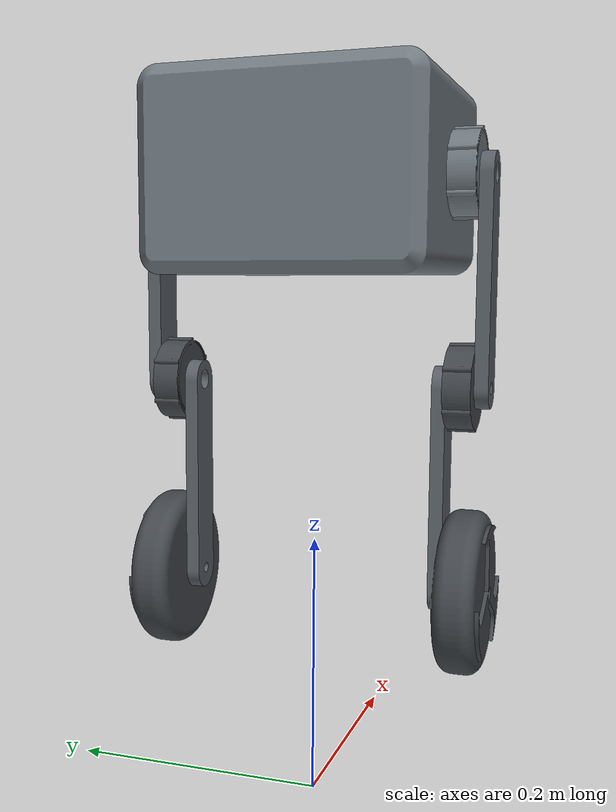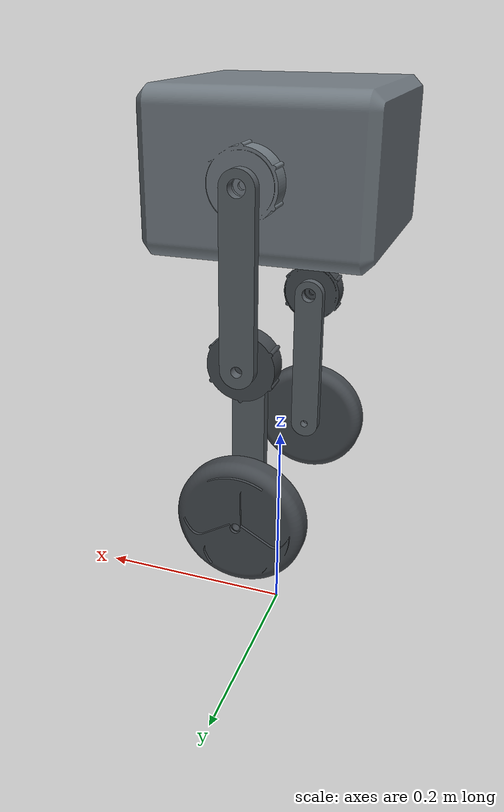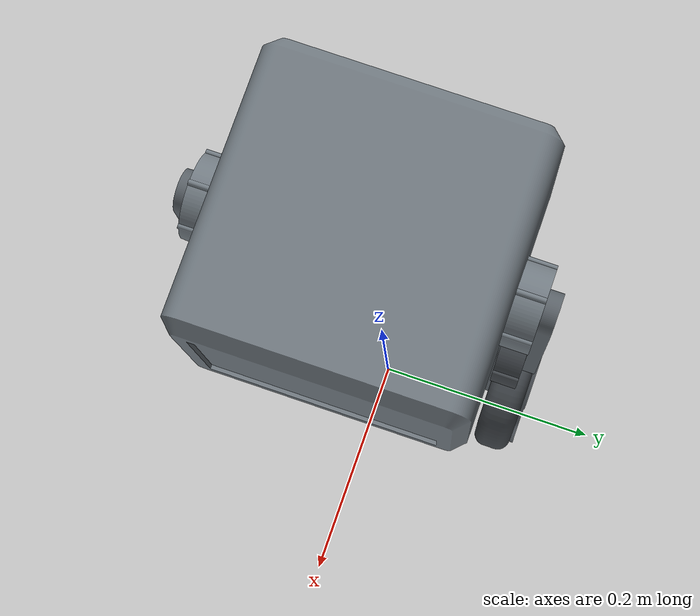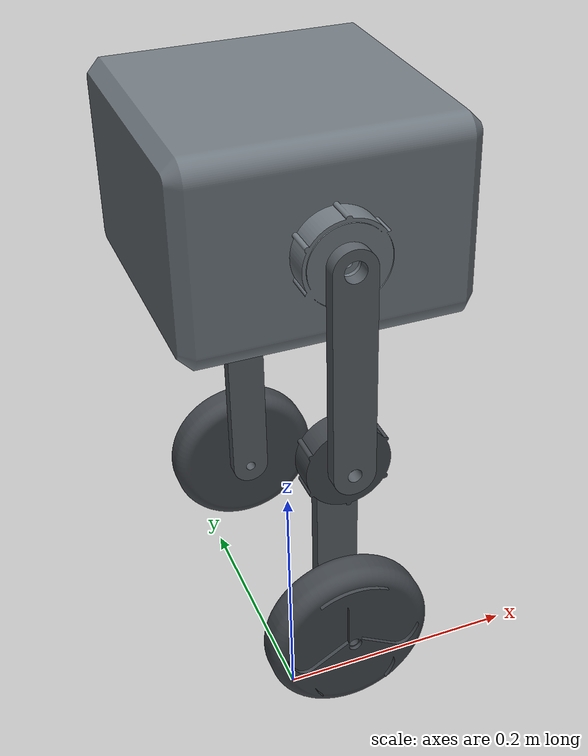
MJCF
<?xml version="1.0" ?>
<!-- Generated using onshape-to-robot -->
<!-- Onshape document_id: e4340d7d6024c97acba5ed0c -->
<mujoco model="balance_v1.1">
  <compiler angle="radian" meshdir="assets" autolimits="true"/>
  <default>
    <default class="balance_v1.1">
      <joint frictionloss="0.1" armature="0.005"/>
      <position kp="50" dampratio="1"/>
      <default class="visual">
        <geom type="mesh" contype="0" conaffinity="0" group="2"/>
      </default>
      <default class="collision">
        <geom group="3"/>
      </default>
    </default>
  </default>
  <worldbody>
    <!-- Link base_chassis -->
    <body name="base_chassis" pos="0 0 0.4" quat="1 0 0 0" childclass="balance_v1.1">
      <freejoint name="base_chassis_free_joint"/>
      <inertial pos="-0.000876166 1.80868e-17 0.07" mass="6.96621" fullinertia="0.0350809 0.0329824 0.0460841 0 0 0"/>
      <!-- Part base_chassis -->
      <geom type="mesh" class="visual" pos="0 1.38778e-17 0.07" quat="1 0 0 0" mesh="base_chassis" material="base_chassis_material"/>
      <geom type="mesh" class="collision" pos="0 1.38778e-17 0.07" quat="1 0 0 0" mesh="base_chassis" material="base_chassis_material"/>
      <!-- Link left_base_rod -->

      <!-- IMU LINK -->
      <body name="imu_link" pos="-0.000876166 1.80868e-17 0.0359">
        <site name="imu_site" pos="0 0 0" size="0.005" rgba="1 0 0 1"/>
      </body>

      <body name="left_base_rod" pos="2.94463e-18 0.12 0.07" quat="0.707107 0.707107 -1.11022e-16 -1.03112e-17">
        <!-- Joint from base_chassis to left_base_rod -->
        <joint axis="0 0 -1" name="left_hip_joint" type="hinge" frictionloss="0.05" damping="0.1"/>
        <inertial pos="6.98473e-18 -0.076487 -0.005" mass="0.061895" fullinertia="0.000146498 5.19435e-06 0.000150661 6.40253e-38 2.31366e-36 -2.88394e-20"/>
        <!-- Part left_base_rod -->
        <geom type="mesh" class="visual" pos="-3.08149e-33 -1.38778e-17 0.12" quat="0.707107 -0.707107 -0 -6.63716e-33" mesh="left_base_rod" material="left_base_rod_material"/>
        <geom type="mesh" class="collision" pos="-3.08149e-33 -1.38778e-17 0.12" quat="0.707107 -0.707107 -0 -6.63716e-33" mesh="left_base_rod" material="left_base_rod_material"/>
        <!-- Link left_knee_motor -->
        <body name="left_knee_motor" pos="-1.07852e-32 -0.15 -1.38778e-17" quat="0 1 0 0">
          <!-- Joint from left_base_rod to left_knee_motor -->
          <inertial pos="2.70416e-18 0 -0.00984935" mass="0.0703948" fullinertia="1.84709e-05 1.84709e-05 3.2354e-05 -2.27671e-37 -4.13111e-37 -2.75238e-21"/>
          <!-- Part left_knee_motor -->
          <geom type="mesh" class="visual" pos="1.54074e-33 -0.15 -0.12" quat="0.707107 0.707107 -0 2.07861e-33" mesh="left_knee_motor" material="left_knee_motor_material"/>
          <geom type="mesh" class="collision" pos="1.54074e-33 -0.15 -0.12" quat="0.707107 0.707107 -0 2.07861e-33" mesh="left_knee_motor" material="left_knee_motor_material"/>
          <!-- Link left_knee_rod -->
          <body name="left_knee_rod" pos="7.70372e-34 0 -0.02" quat="1 -0 3.05311e-16 5.55112e-17">
            <!-- Joint from left_knee_motor to left_knee_rod -->
            <joint axis="0 0 -1" name="left_knee_joint" type="hinge" frictionloss="0.05" damping="0.1"/>
            <inertial pos="3.69605e-19 0.0769044 -0.005" mass="0.0622485" fullinertia="0.000148404 5.20092e-06 0.000152568 6.41063e-38 -5.8041e-35 -2.9216e-20"/>
            <!-- Part left_knee_rod -->
            <geom type="mesh" class="visual" pos="-3.08149e-33 -0.15 -0.1" quat="0.707107 0.707107 1.11022e-16 -5.53216e-32" mesh="left_knee_rod" material="left_knee_rod_material"/>
            <geom type="mesh" class="collision" pos="-3.08149e-33 -0.15 -0.1" quat="0.707107 0.707107 1.11022e-16 -5.53216e-32" mesh="left_knee_rod" material="left_knee_rod_material"/>
            <!-- Link left_wheel -->
            <body name="left_wheel" pos="-1.3552e-18 0.15 1.38778e-17" quat="7.09109e-17 0.999931 0.0117314 6.92663e-17">
              <!-- Joint from left_knee_rod to left_wheel -->
              <joint axis="0 0 -1" name="left_wheel_joint" frictionloss="0.05" damping="0.1"/>
              <inertial pos="4.39509e-18 -1.11022e-16 -0.0152956" mass="0.360891" fullinertia="0.000338132 0.000338132 0.000622739 -8.13501e-22 6.20683e-37 -5.64245e-20"/>
              <!-- Part left_wheel -->
              <geom type="mesh" class="visual" pos="1.73472e-18 0.3 0.1" quat="0.707107 -0.707107 -0 -8.10658e-19" mesh="left_wheel" material="left_wheel_material"/>
              <geom type="mesh" class="collision" pos="1.73472e-18 0.3 0.1" quat="0.707107 -0.707107 -0 -8.10658e-19" mesh="left_wheel" material="left_wheel_material"/>
            </body>
          </body>
        </body>
      </body>
      <!-- Link right_base_rod -->
      <body name="right_base_rod" pos="-1.13913e-18 -0.12 0.07" quat="0.707106 -0.707106 -0.000829542 -0.000829542">
        <!-- Joint from base_chassis to right_base_rod -->
        <joint axis="0 0 1" name="right_hip_joint" type="hinge" frictionloss="0.05" damping="0.1"/>
        <inertial pos="6.97374e-18 0.076487 -0.005" mass="0.061895" fullinertia="0.000146498 5.19435e-06 0.000150661 -9.99137e-24 -7.55715e-39 2.88394e-20"/>
        <!-- Part right_base_rod -->
        <geom type="mesh" class="visual" pos="2.71051e-20 0 0.12" quat="0.707107 0.707107 0 1.76091e-19" mesh="right_base_rod" material="right_base_rod_material"/>
        <geom type="mesh" class="collision" pos="2.71051e-20 0 0.12" quat="0.707107 0.707107 0 1.76091e-19" mesh="right_base_rod" material="right_base_rod_material"/>
        <!-- Link right_knee_motor -->
        <body name="right_knee_motor" pos="-4.60786e-19 0.15 0" quat="1.13194e-21 0.999999 0.00117315 -1.51155e-21">
          <!-- Joint from right_base_rod to right_knee_motor -->
          <inertial pos="3.11391e-18 0 -0.00984935" mass="0.0703948" fullinertia="1.84709e-05 1.84709e-05 3.2354e-05 0 0 2.75238e-21"/>
          <!-- Part right_knee_motor -->
          <geom type="mesh" class="visual" pos="0 0.15 -0.12" quat="0.707107 -0.707107 0 0" mesh="right_knee_motor" material="right_knee_motor_material"/>
          <geom type="mesh" class="collision" pos="0 0.15 -0.12" quat="0.707107 -0.707107 0 0" mesh="right_knee_motor" material="right_knee_motor_material"/>
          <!-- Link right_knee_rod -->
          <body name="right_knee_rod" pos="0 -1.38778e-17 -0.02" quat="1 0 0 0">
            <!-- Joint from right_knee_motor to right_knee_rod -->
            <joint axis="0 0 1" name="right_knee_joint" type="hinge" frictionloss="0.05" damping="0.1"/>
            <inertial pos="1.28849e-18 -0.0769044 -0.005" mass="0.0622485" fullinertia="0.000148404 5.20092e-06 0.000152568 -2.83754e-36 -4.52076e-22 5.36605e-20"/>
            <!-- Part right_knee_rod -->
            <geom type="mesh" class="visual" pos="1.12757e-17 0.15 -0.1" quat="0.707107 -0.707107 0 -3.83896e-17" mesh="right_knee_rod" material="right_knee_rod_material"/>
            <geom type="mesh" class="collision" pos="1.12757e-17 0.15 -0.1" quat="0.707107 -0.707107 0 -3.83896e-17" mesh="right_knee_rod" material="right_knee_rod_material"/>
            <!-- Link right_wheel -->
            <body name="right_wheel" pos="4.33681e-19 -0.15 2.77556e-17" quat="8.29376e-17 1 2.46519e-32 5.42911e-17">
              <!-- Joint from right_knee_rod to right_wheel -->
              <joint axis="0 0 1" name="right_wheel_joint" frictionloss="0.05" damping="0.1"/>
              <inertial pos="1.71091e-18 5.55112e-17 -0.0152956" mass="0.360891" fullinertia="0.000338132 0.000338132 0.000622739 -7.09074e-36 -3.09033e-20 9.21526e-21"/>
              <!-- Part right_wheel -->
              <geom type="mesh" class="visual" pos="-1.04083e-17 -0.3 0.1" quat="0.707107 0.707107 -1.11022e-16 1.54573e-16" mesh="right_wheel" material="right_wheel_material"/>
              <geom type="mesh" class="collision" pos="-1.04083e-17 -0.3 0.1" quat="0.707107 0.707107 -1.11022e-16 1.54573e-16" mesh="right_wheel" material="right_wheel_material"/>
            </body>
          </body>
        </body>
      </body>
    </body>
  </worldbody>
  <asset>
    <mesh file="left_knee_rod.stl"/>
    <mesh file="right_knee_rod.stl"/>
    <mesh file="right_wheel.stl"/>
    <mesh file="right_base_rod.stl"/>
    <mesh file="left_knee_motor.stl"/>
    <mesh file="left_base_rod.stl"/>
    <mesh file="left_wheel.stl"/>
    <mesh file="base_chassis.stl"/>
    <mesh file="right_knee_motor.stl"/>
    <material name="base_chassis_material" rgba="0.439216 0.47451 0.501961 1"/>
    <material name="left_base_rod_material" rgba="0.34902 0.376471 0.4 1"/>
    <material name="left_knee_motor_material" rgba="0.262745 0.282353 0.301961 1"/>
    <material name="left_knee_rod_material" rgba="0.34902 0.376471 0.4 1"/>
    <material name="left_wheel_material" rgba="0.262745 0.282353 0.301961 1"/>
    <material name="right_base_rod_material" rgba="0.34902 0.376471 0.4 1"/>
    <material name="right_knee_motor_material" rgba="0.262745 0.282353 0.301961 1"/>
    <material name="right_knee_rod_material" rgba="0.34902 0.376471 0.4 1"/>
    <material name="right_wheel_material" rgba="0.262745 0.282353 0.301961 1"/>
  </asset>
  <actuator>
    <motor name="left_hip_joint" joint="left_hip_joint" forcerange="-25 25"/>
    <motor name="left_knee_joint" joint="left_knee_joint" forcerange="-25 25"/>
    <motor name="left_wheel_joint" joint="left_wheel_joint" forcerange="-20 20"/>
    <motor name="right_hip_joint" joint="right_hip_joint" forcerange="-25 25"/>
    <motor name="right_knee_joint" joint="right_knee_joint" forcerange="-25 25"/>
    <motor name="right_wheel_joint" joint="right_wheel_joint" forcerange="-20 20"/>
  </actuator>

  <sensor>
    <accelerometer name="imu_acc" site="imu_site"/>
    <gyro    name="imu_gyro" site="imu_site"/>
  </sensor>

  <equality/>
</mujoco>
